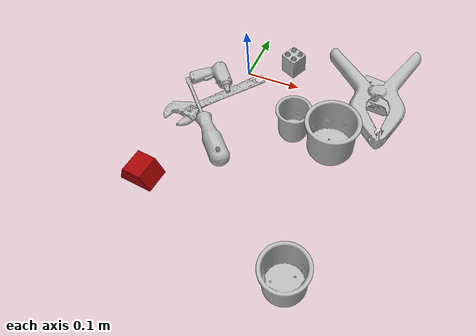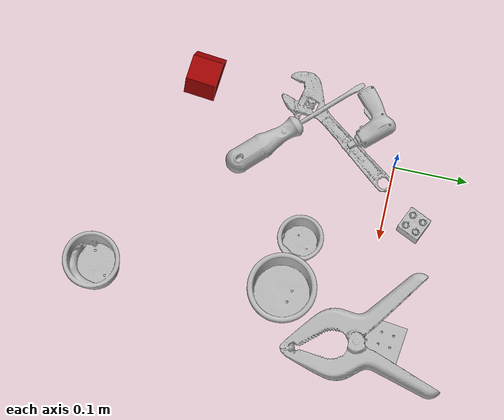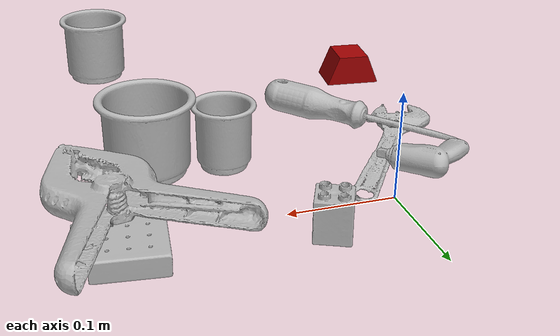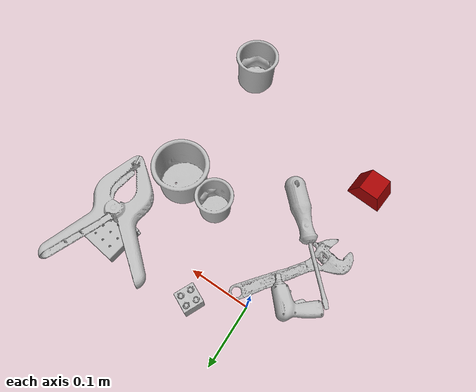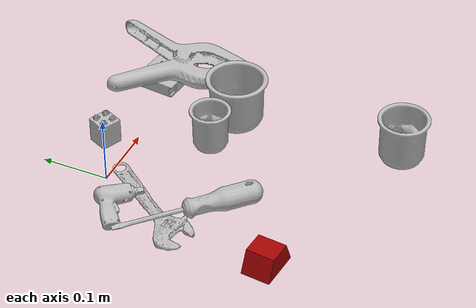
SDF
<sdf version="1.4">
  <world name="default">
    <light name="light1" type="point">
      <pose>0 0 1 0 0 0</pose>
      <diffuse>3 3 3 1</diffuse>
      <specular>3 3 3 1</specular>
    </light>
    <light name="light2" type="point">
      <pose>0 0.5 2 0 0 0</pose>
      <diffuse>1 1 1 1</diffuse>
      <specular>1 1 1 1</specular>
    </light>
    <light name="light3" type="point">
      <pose>0 0.5 2 0 0 0</pose>
      <diffuse>3 3 3 1</diffuse>
      <specular>3 3 3 1</specular>
    </light>
    <scene>
      <ambient>0.7 0.7 0.7</ambient>
    </scene>
    <model name="cup1">
      <link name="link_cup1">
        <collision name="default">
          <geometry>
            <mesh>
              <uri>model://b_cups/collision_meshes/collision.obj</uri>
              <scale>1.0 1.0 1.0</scale>
            </mesh>
          </geometry>
          <surface>
            <friction>
              <ode>
                <mu>0.5</mu>
                <mu2>0.5</mu2>
              </ode>
            </friction>
          <contact>
        <ode>
            <max_vel>0</max_vel>
            <min_depth>0.0001</min_depth>
            <kp>1e8</kp>
        </ode>
    </contact></surface>
        </collision>
        <visual name="default">
          <geometry>
            <mesh>
              <uri>model://b_cups/visual_meshes/visual.dae</uri>
              <scale>1.0 1.0 1.0</scale>
            </mesh>
          </geometry>
        </visual>
        <inertial>
          <mass>0.03190340846776962</mass>
          <pose>0.0005182004533708096 0.0018058607820421457 -0.0013381806202232838 0.11356328214070865 0.03872483993123738 -0.34569243052877063</pose>
          <inertia>
            <ixx>2.0883017e-05</ixx>
            <iyy>2.0486541e-05</iyy>
            <izz>1.7572664e-05</izz>
            <ixy>0</ixy>
            <ixz>0</ixz>
            <iyz>0</iyz>
          </inertia>
        </inertial>
      </link>
      <pose>0.12808386981487274 -0.10183387249708176 0.031996194273233414 -0.007648100288794897 -0.0037956680203912936 -1.604016497051582</pose>
    </model>
    <model name="cup2">
      <link name="link_cup2">
        <collision name="default">
          <geometry>
            <mesh>
              <uri>model://e_cups/collision_meshes/collision.obj</uri>
              <scale>1.0 1.0 1.0</scale>
            </mesh>
          </geometry>
          <surface>
            <friction>
              <ode>
                <mu>0.5</mu>
                <mu2>0.5</mu2>
              </ode>
            </friction>
          <contact>
        <ode>
            <max_vel>0</max_vel>
            <min_depth>0.0001</min_depth>
            <kp>1e8</kp>
        </ode>
    </contact></surface>
        </collision>
        <visual name="default">
          <geometry>
            <mesh>
              <uri>model://e_cups/visual_meshes/visual.dae</uri>
              <scale>1.0 1.0 1.0</scale>
            </mesh>
          </geometry>
        </visual>
        <inertial>
          <mass>0.09350046515464783</mass>
          <pose>0.0011355748865753412 0.0028797851409763098 -0.0038829720579087734 0.69524087765449 0.08767898447354379 -0.5235249697507389</pose>
          <inertia>
            <ixx>8.2444014e-05</ixx>
            <iyy>8.6165805e-05</iyy>
            <izz>7.882601e-05</izz>
            <ixy>0</ixy>
            <ixz>0</ixz>
            <iyz>0</iyz>
          </inertia>
        </inertial>
      </link>
      <pose>0.21485871076583862 -0.3618902564048767 0.03559974208474159 0.000161133901048205 -0.00020436154724979462 -2.211116456623091</pose>
    </model>
    <model name="cup3">
      <link name="link_cup3">
        <collision name="default">
          <geometry>
            <mesh>
              <uri>model://h_cups/collision_meshes/collision.obj</uri>
              <scale>1.0 1.0 1.0</scale>
            </mesh>
          </geometry>
          <surface>
            <friction>
              <ode>
                <mu>0.5</mu>
                <mu2>0.5</mu2>
              </ode>
            </friction>
          <contact>
        <ode>
            <max_vel>0</max_vel>
            <min_depth>0.0001</min_depth>
            <kp>1e8</kp>
        </ode>
    </contact></surface>
        </collision>
        <visual name="default">
          <geometry>
            <mesh>
              <uri>model://h_cups/visual_meshes/visual.dae</uri>
              <scale>1.0 1.0 1.0</scale>
            </mesh>
          </geometry>
        </visual>
        <inertial>
          <mass>0.05626832693815231</mass>
          <pose>-2.7024709197576158e-05 0.00023018589126877487 -0.0018405396258458495 -0.02436208446622447 0.06545190020339471 0.12885609358770897</pose>
          <inertia>
            <ixx>7.2667885e-05</ixx>
            <iyy>7.180077e-05</iyy>
            <izz>7.620872e-05</izz>
            <ixy>0</ixy>
            <ixz>0</ixz>
            <iyz>0</iyz>
          </inertia>
        </inertial>
      </link>
      <pose>0.19860869646072388 -0.11129660159349442 0.037758003920316696 1.584502752714043e-06 -2.8138192937215958e-08 -1.8728563308590658</pose>
    </model>
    <model name="toy1">
      <link name="link_toy1">
        <collision name="default">
          <geometry>
            <mesh>
              <uri>model://nine_hole_peg_test/collision_meshes/collision.obj</uri>
              <scale>0.5 0.5 0.5</scale>
            </mesh>
          </geometry>
          <surface>
            <friction>
              <ode>
                <mu>0.5</mu>
                <mu2>0.5</mu2>
              </ode>
            </friction>
          <contact>
        <ode>
            <max_vel>0</max_vel>
            <min_depth>0.0001</min_depth>
            <kp>1e8</kp>
        </ode>
    </contact></surface>
        </collision>
        <visual name="default">
          <geometry>
            <mesh>
              <uri>model://nine_hole_peg_test/visual_meshes/visual.dae</uri>
              <scale>0.5 0.5 0.5</scale>
            </mesh>
          </geometry>
        </visual>
        <inertial>
          <mass>0.06318242102861404</mass>
          <pose>-0.0023086941801011562 -0.004823808092623949 1.3230346667114645e-05 -0.0014666789322941463 0.0007194184826049595 -0.6342412444031488</pose>
          <inertia>
            <ixx>2.4699024e-05</ixx>
            <iyy>2.3061213e-05</iyy>
            <izz>4.327997e-05</izz>
            <ixy>0</ixy>
            <ixz>0</ixz>
            <iyz>0</iyz>
          </inertia>
        </inertial>
      </link>
      <pose>0.24372456967830658 0.023152554407715797 0.010388759896159172 -2.2498914623163156e-05 8.431659536517678e-05 -1.6825161612181545</pose>
    </model>
    <model name="toy2">
      <link name="link_toy2">
        <collision name="default">
          <geometry>
            <mesh>
              <uri>model://prism/collision_meshes/collision.obj</uri>
              <scale>0.5 0.5 0.5</scale>
            </mesh>
          </geometry>
          <surface>
            <friction>
              <ode>
                <mu>0.5</mu>
                <mu2>0.5</mu2>
              </ode>
            </friction>
          <contact>
        <ode>
            <max_vel>0</max_vel>
            <min_depth>0.0001</min_depth>
            <kp>1e8</kp>
        </ode>
    </contact></surface>
        </collision>
        <visual name="default">
          <geometry>
            <mesh>
              <uri>model://prism/visual_meshes/visual.dae</uri>
              <scale>0.5 0.5 0.5</scale>
            </mesh>
          </geometry>
        </visual>
        <inertial>
          <mass>0.058882199227809906</mass>
          <pose>-4.92679828312248e-05 -2.480786349678965e-07 -0.0016934550367295742 0.0 0.00655918030046738 0.0</pose>
          <inertia>
            <ixx>1.32851155e-05</ixx>
            <iyy>1.6055232e-05</iyy>
            <izz>1.9665738e-05</izz>
            <ixy>0</ixy>
            <ixz>0</ixz>
            <iyz>0</iyz>
          </inertia>
        </inertial>
      </link>
      <pose>-0.06868411600589752 -0.2744446098804474 0.016084998846054077 9.767409248073757e-08 -4.21114083935127e-08 3.0396783373646414</pose>
    </model>
    <model name="toy3">
      <link name="link_toy3">
        <collision name="default">
          <geometry>
            <mesh>
              <uri>model://b_toy_airplane/collision_meshes/collision.obj</uri>
              <scale>0.5 0.5 0.5</scale>
            </mesh>
          </geometry>
          <surface>
            <friction>
              <ode>
                <mu>0.5</mu>
                <mu2>0.5</mu2>
              </ode>
            </friction>
          <contact>
        <ode>
            <max_vel>0</max_vel>
            <min_depth>0.0001</min_depth>
            <kp>1e8</kp>
        </ode>
    </contact></surface>
        </collision>
        <visual name="default">
          <geometry>
            <mesh>
              <uri>model://b_toy_airplane/visual_meshes/visual.dae</uri>
              <scale>0.5 0.5 0.5</scale>
            </mesh>
          </geometry>
        </visual>
        <inertial>
          <mass>0.06070837751030922</mass>
          <pose>0.002540682442486286 0.0020077924709767103 0.0047715334221720695 -0.040018114249042835 -0.04022179473329346 -0.5601502235260123</pose>
          <inertia>
            <ixx>2.8176557e-05</ixx>
            <iyy>1.1262445e-05</iyy>
            <izz>3.5054447e-05</izz>
            <ixy>0</ixy>
            <ixz>0</ixz>
            <iyz>0</iyz>
          </inertia>
        </inertial>
      </link>
      <pose>-0.05439569056034088 -0.03775349631905556 0.008483381941914558 0.1836275916814384 0.10161897108293934 -0.8520567667672493</pose>
    </model>
    <model name="toy4">
      <link name="link_toy4">
        <collision name="default">
          <geometry>
            <mesh>
              <uri>model://f_lego_duplo/collision_meshes/collision.obj</uri>
              <scale>1.0 1.0 1.0</scale>
            </mesh>
          </geometry>
          <surface>
            <friction>
              <ode>
                <mu>0.5</mu>
                <mu2>0.5</mu2>
              </ode>
            </friction>
          <contact>
        <ode>
            <max_vel>0</max_vel>
            <min_depth>0.0001</min_depth>
            <kp>1e8</kp>
        </ode>
    </contact></surface>
        </collision>
        <visual name="default">
          <geometry>
            <mesh>
              <uri>model://f_lego_duplo/visual_meshes/visual.dae</uri>
              <scale>1.0 1.0 1.0</scale>
            </mesh>
          </geometry>
        </visual>
        <inertial>
          <mass>0.029542475938796997</mass>
          <pose>2.369392677792348e-05 0.00013393184053711593 0.0018837879179045558 0.029838766168002753 -0.014424835911361083 -0.6756712748416152</pose>
          <inertia>
            <ixx>6.2424897e-06</ixx>
            <iyy>6.2981026e-06</iyy>
            <izz>5.4187462e-06</izz>
            <ixy>0</ixy>
            <ixz>0</ixz>
            <iyz>0</iyz>
          </inertia>
        </inertial>
      </link>
      <pose>0.07474453747272491 0.04085404798388481 0.02187100611627102 4.110843326293072e-06 4.183733025319775e-06 2.7172481912441477</pose>
    </model>
    <model name="hardware1">
      <link name="link_hardware1">
        <collision name="default">
          <geometry>
            <mesh>
              <uri>model://extra_large_clamp/collision_meshes/collision.obj</uri>
              <scale>1.0 1.0 1.0</scale>
            </mesh>
          </geometry>
          <surface>
            <friction>
              <ode>
                <mu>0.5</mu>
                <mu2>0.5</mu2>
              </ode>
            </friction>
          <contact>
        <ode>
            <max_vel>0</max_vel>
            <min_depth>0.0001</min_depth>
            <kp>1e8</kp>
        </ode>
    </contact></surface>
        </collision>
        <visual name="default">
          <geometry>
            <mesh>
              <uri>model://extra_large_clamp/visual_meshes/visual.dae</uri>
              <scale>1.0 1.0 1.0</scale>
            </mesh>
          </geometry>
        </visual>
        <inertial>
          <mass>0.20469266176223755</mass>
          <pose>0.00323202065192163 -7.615445792907849e-05 0.0003172155993524939 0.013786991356050505 -0.0005066836095273004 -0.000893628832478523</pose>
          <inertia>
            <ixx>0.00031109934</ixx>
            <iyy>0.0005356169</iyy>
            <izz>0.00081831246</izz>
            <ixy>0</ixy>
            <ixz>0</ixz>
            <iyz>0</iyz>
          </inertia>
        </inertial>
      </link>
      <pose>0.2449386864900589 -0.0008333115838468075 0.039024654775857925 0.0034918785186554262 0.08070527329406585 -1.2747402543728779</pose>
    </model>
    <model name="hardware2">
      <link name="link_hardware2">
        <collision name="default">
          <geometry>
            <mesh>
              <uri>model://flat_screwdriver/collision_meshes/collision.obj</uri>
              <scale>1.0 1.0 1.0</scale>
            </mesh>
          </geometry>
          <surface>
            <friction>
              <ode>
                <mu>0.5</mu>
                <mu2>0.5</mu2>
              </ode>
            </friction>
          <contact>
        <ode>
            <max_vel>0</max_vel>
            <min_depth>0.0001</min_depth>
            <kp>1e8</kp>
        </ode>
    </contact></surface>
        </collision>
        <visual name="default">
          <geometry>
            <mesh>
              <uri>model://flat_screwdriver/visual_meshes/visual.dae</uri>
              <scale>1.0 1.0 1.0</scale>
            </mesh>
          </geometry>
        </visual>
        <inertial>
          <mass>0.09510745853185654</mass>
          <pose>-0.048918697983026505 -0.0006576799787580967 -0.000614091579336673 -0.5614762322958965 -0.003233723970645699 0.006982278511552064</pose>
          <inertia>
            <ixx>1.1236876e-05</ixx>
            <iyy>0.00014265477</iyy>
            <izz>0.00014258873</izz>
            <ixy>0</ixy>
            <ixz>0</ixz>
            <iyz>0</iyz>
          </inertia>
        </inertial>
      </link>
      <pose>-0.024317964911460876 -0.14138802886009216 0.015638908371329308 -0.21432205245283267 0.03488290386213402 2.331840217167571</pose>
    </model>
    <model name="hardware3">
      <link name="link_hardware3">
        <collision name="default">
          <geometry>
            <mesh>
              <uri>model://adjustable_wrench/collision_meshes/collision.obj</uri>
              <scale>1.0 1.0 1.0</scale>
            </mesh>
          </geometry>
          <surface>
            <friction>
              <ode>
                <mu>0.5</mu>
                <mu2>0.5</mu2>
              </ode>
            </friction>
          <contact>
        <ode>
            <max_vel>0</max_vel>
            <min_depth>0.0001</min_depth>
            <kp>1e8</kp>
        </ode>
    </contact></surface>
        </collision>
        <visual name="default">
          <geometry>
            <mesh>
              <uri>model://adjustable_wrench/visual_meshes/visual.dae</uri>
              <scale>1.0 1.0 1.0</scale>
            </mesh>
          </geometry>
        </visual>
        <inertial>
          <mass>0.02741360291838646</mass>
          <pose>0.03740980476140976 -0.002896887017413974 -0.0011149230413138866 -0.0144733350781748 0.006656025939833136 -0.010954202845362587</pose>
          <inertia>
            <ixx>5.610589e-06</ixx>
            <iyy>6.5665416e-05</iyy>
            <izz>7.0977985e-05</izz>
            <ixy>0</ixy>
            <ixz>0</ixz>
            <iyz>0</iyz>
          </inertia>
        </inertial>
      </link>
      <pose>-0.02861490100622177 -0.08625633269548416 0.006125248037278652 0.04678238025628377 -0.029267312184326526 -2.222829824196908</pose>
    </model>
  <physics type="ode">
      <max_contacts>50</max_contacts>
      <ode>
        <solver>
          <type>quick</type>
          <iters>75</iters>
        </solver>
        <constraints>
          <contact_max_correcting_vel>0</contact_max_correcting_vel>
          <contact_surface_layer>0</contact_surface_layer>
        </constraints>
      </ode>
    </physics></world>
</sdf>
